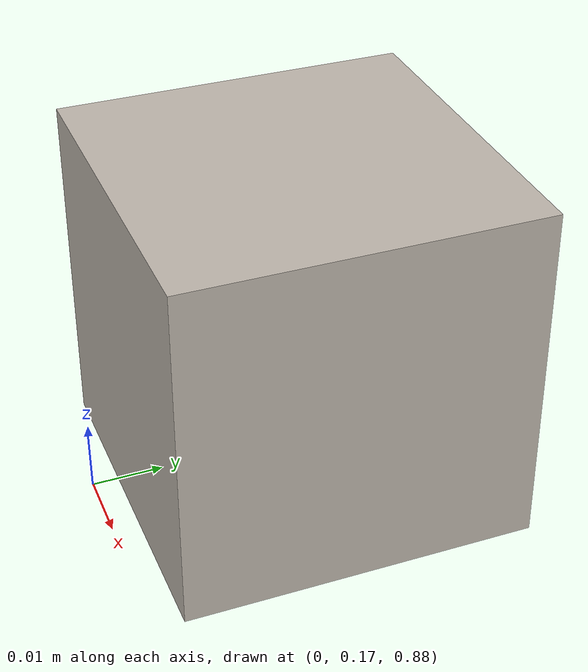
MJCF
<mujoco model="cube_2">
    <asset>
        <material name="black" rgba="0.1 0.1 0.1 1"/>
        <texture name="texture:object" file="block.png" gridsize="3 4" gridlayout=".U..LFRB.D.."></texture>
        <material name="material:object" texture="texture:object" specular="1" shininess="0.3" reflectance="0"></material>
    </asset>

    <default>
        <default class="visual">
            <geom contype="0" conaffinity="0" group="2" material="black"/>
        </default>
        <default class="collision">
            <geom group="3" mass="1" density="0"/>
        </default>
    </default>

    <worldbody>
        <body name="cube_2" pos="0.0 0.2 0.9">
            <geom type="box" pos="0 0 0" size="0.025 0.025 0.025" material="material:object" class="visual" density="500"/>
            <geom type="box" pos="0 0 0" size="0.025 0.025 0.025" class="collision"/>
        </body>
    </worldbody>
</mujoco>
